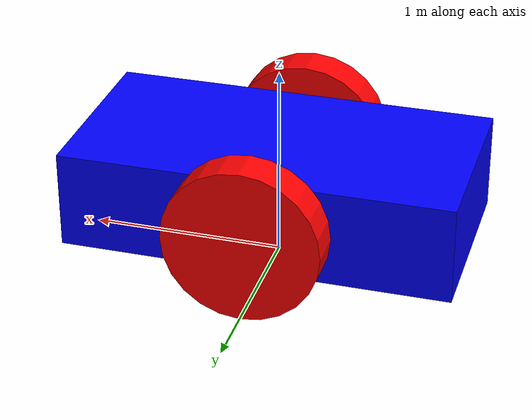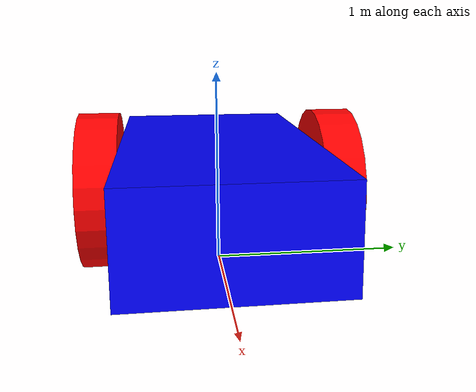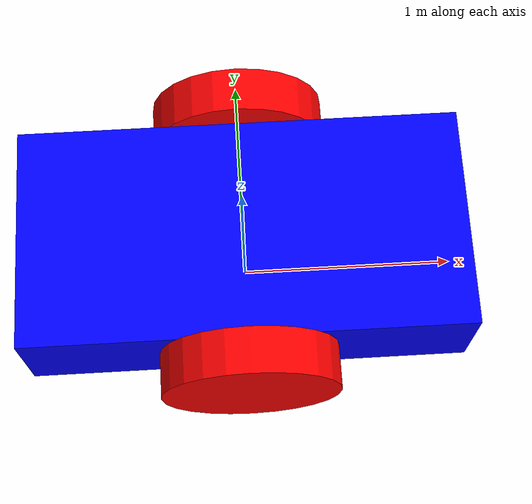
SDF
<?xml version="1.0" ?>
<sdf version="1.10">
    <model name='gz_robot' canonical_link="chassis">
        <!--chassis-->
        <link name='chassis'>
            <pose>0 0 0.4 0 0 0</pose>
            <inertial>
                <mass>1.14395</mass>
                <inertia>
                    <ixx>0.126164</ixx>
                    <ixy>0</ixy>
                    <ixz>0</ixz>
                    <iyy>0.416519</iyy>
                    <iyz>0</iyz>
                    <izz>0.481014</izz>
                </inertia>
            </inertial>
            <visual name='visual_chassis'>
                <geometry>
                    <box>
                        <size>2.0 1.0 0.5</size>
                    </box>
                </geometry>
                <!--Color of the link-->
                <material>
                    <ambient>0.0 0.0 1.0 1</ambient>
                    <diffuse>0.0 0.0 1.0 1</diffuse>
                    <specular>0.0 0.0 1.0 1</specular>
                </material>
            </visual>
            <collision name='collision_chassis'>
                <geometry>
                    <box>
                        <size>2.0 1.0 0.5</size>
                    </box>
                </geometry>
            </collision>
        </link>

        <!--Left wheel-->
        <link name='left_wheel'>
            <pose>0 0.6 0.4 -1.5707 0 0</pose> <!--angles are in radian-->
            <inertial>
                <mass>2</mass>
                <inertia>
                    <ixx>0.145833</ixx>
                    <ixy>0</ixy>
                    <ixz>0</ixz>
                    <iyy>0.145833</iyy>
                    <iyz>0</iyz>
                    <izz>0.125</izz>
                </inertia>
            </inertial>
            <visual name='visual_left_wheel'>
                <geometry>
                    <cylinder>
                        <radius>0.4</radius>
                        <length>0.2</length>
                    </cylinder>
                </geometry>
                <material>
                    <ambient>1.0 0.0 0.0 1</ambient>
                    <diffuse>1.0 0.0 0.0 1</diffuse>
                    <specular>1.0 0.0 0.0 1</specular>
                </material>
            </visual>
            <collision name='collision_left_wheel'>
                <geometry>
                    <cylinder>
                        <radius>0.4</radius>
                        <length>0.2</length>
                    </cylinder>
                </geometry>
            </collision>
        </link>

        <!--The same as left wheel but with different position-->
        <link name='right_wheel'>
            <pose>0 -0.6 0.4 -1.5707 0 0</pose> <!--angles are in radian-->
            <inertial>
                <mass>2</mass>
                <inertia>
                    <ixx>0.145833</ixx>
                    <ixy>0</ixy>
                    <ixz>0</ixz>
                    <iyy>0.145833</iyy>
                    <iyz>0</iyz>
                    <izz>0.125</izz>
                </inertia>
            </inertial>
            <visual name='visual_right_wheel'>
                <geometry>
                    <cylinder>
                        <radius>0.4</radius>
                        <length>0.2</length>
                    </cylinder>
                </geometry>
                <material>
                    <ambient>1.0 0.0 0.0 1</ambient>
                    <diffuse>1.0 0.0 0.0 1</diffuse>
                    <specular>1.0 0.0 0.0 1</specular>
                </material>
            </visual>
            <collision name='collision_right_wheel'>
                <geometry>
                    <cylinder>
                        <radius>0.4</radius>
                        <length>0.2</length>
                    </cylinder>
                </geometry>
            </collision>
        </link>

        <joint name='left_wheel_joint' type='revolute'>
            <parent>chassis</parent>
            <child>left_wheel</child>
            <axis>
            <xyz>0 0 1</xyz>
            <limit>
                <lower>-1.79769e+308</lower>
                <upper>1.79769e+308</upper>
            </limit>
            </axis>
        </joint>

        <joint name='right_wheel_joint' type='revolute'>
            <parent>chassis</parent>
            <child>right_wheel</child>
            <axis>
            <xyz>0 0 1</xyz>
            <limit>
                <lower>-1.79769e+308</lower>
                <upper>1.79769e+308</upper>
            </limit>
            </axis>
        </joint>

        <plugin
            filename="ignition-gazebo-diff-drive-system"
            name="ignition::gazebo::systems::DiffDrive">
            <left_joint>left_wheel_joint</left_joint>
            <right_joint>right_wheel_joint</right_joint>
            <wheel_separation>1.2</wheel_separation>
            <wheel_radius>0.4</wheel_radius>
            <odom_publish_frequency>1</odom_publish_frequency>
            <topic>/cmd_vel</topic>
        </plugin>

    </model>
</sdf>
